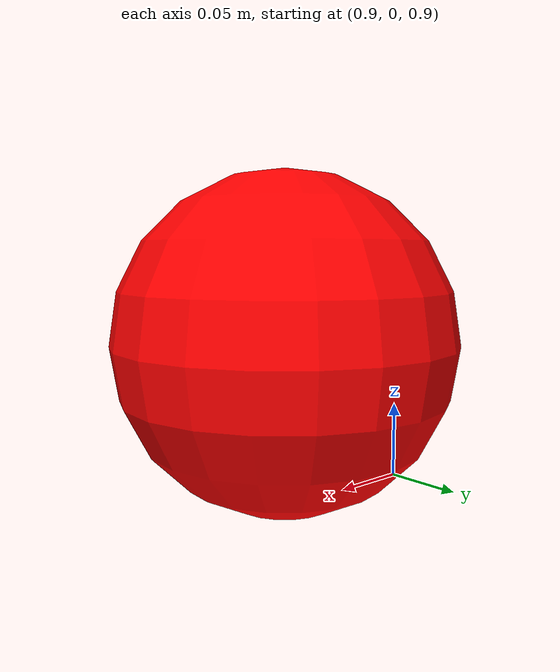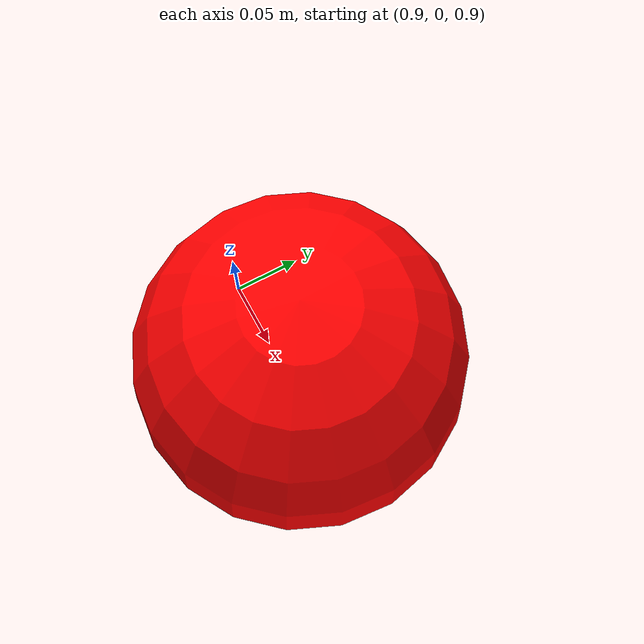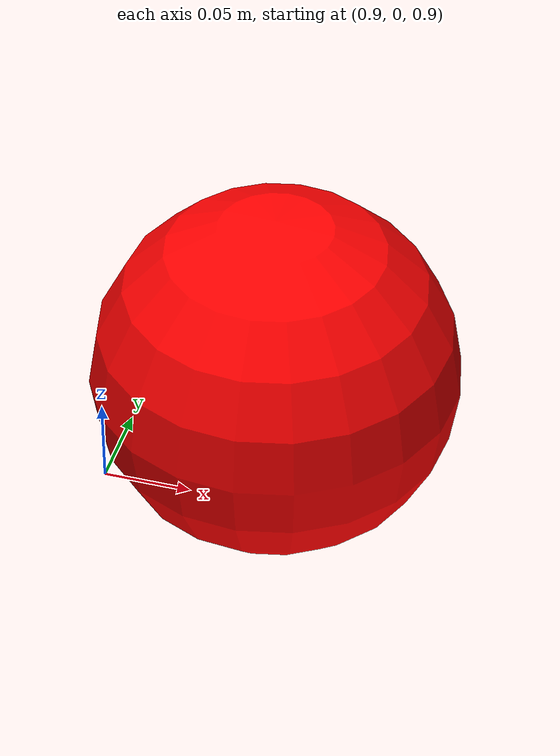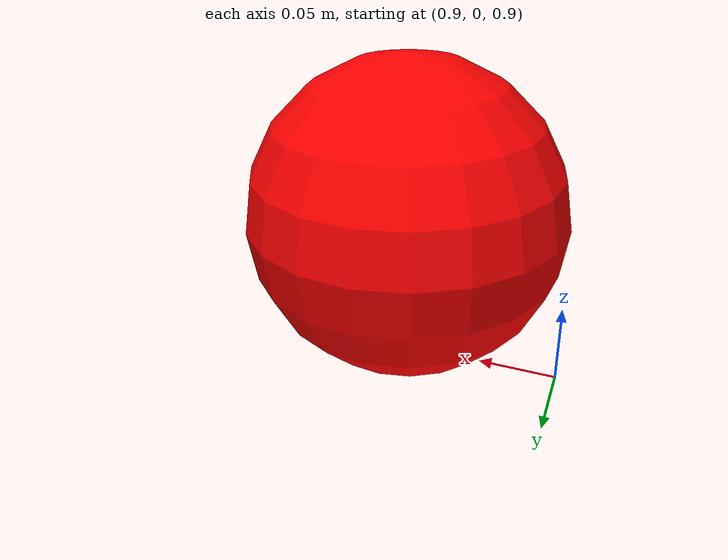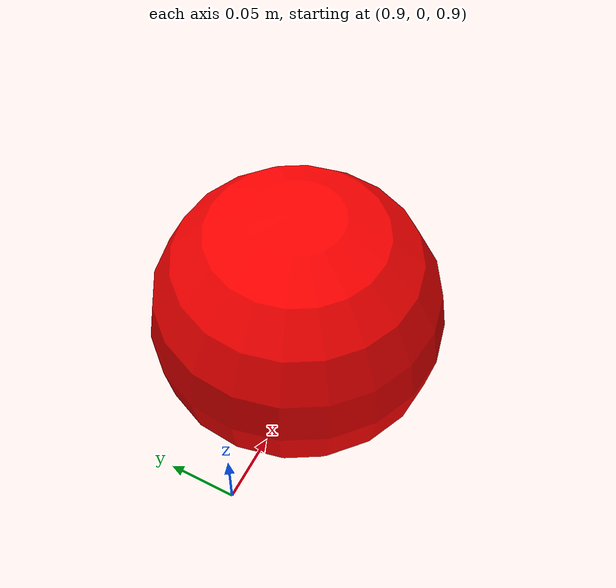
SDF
<?xml version='1.0'?>

<sdf version='1.4'>

    <model name="ball">

  <static>false</static>

  <link name="ball_link">
    <inertial>
     <pose>1 0 0 0 0 0</pose>
     <mass>2.0</mass>
     <inertia>
     <ixx>1.0</ixx>
     <iyy>1.0</iyy>
     <izz>1.0</izz>
     </inertia>
    </inertial>
    <visual name='ball_vis'>
     <pose>1 0 1 0 0 1</pose>
      <geometry>
        <sphere>
	 <radius>0.1</radius>
 	</sphere>
      </geometry>
    <material>
    <ambient>1 0 0 1</ambient>
    <diffuse>1 0 0 1</diffuse>
    <specular>0.1 0.1 0.1 1</specular>
    <emissive>0 0 0 0</emissive>
    </material>

    </visual>
    <collision name='ball_collision'>
     <pose>0 0 0 0 0 0</pose>
      <geometry>
        <sphere>
	 <radius>0.1</radius>
 	</sphere>
      </geometry>
    </collision>
  </link>

    </model>

</sdf>
